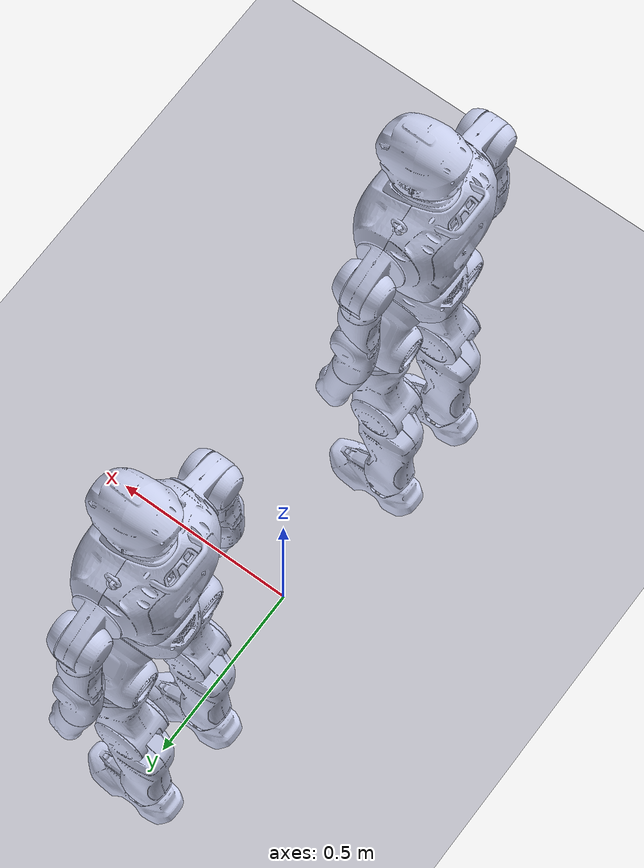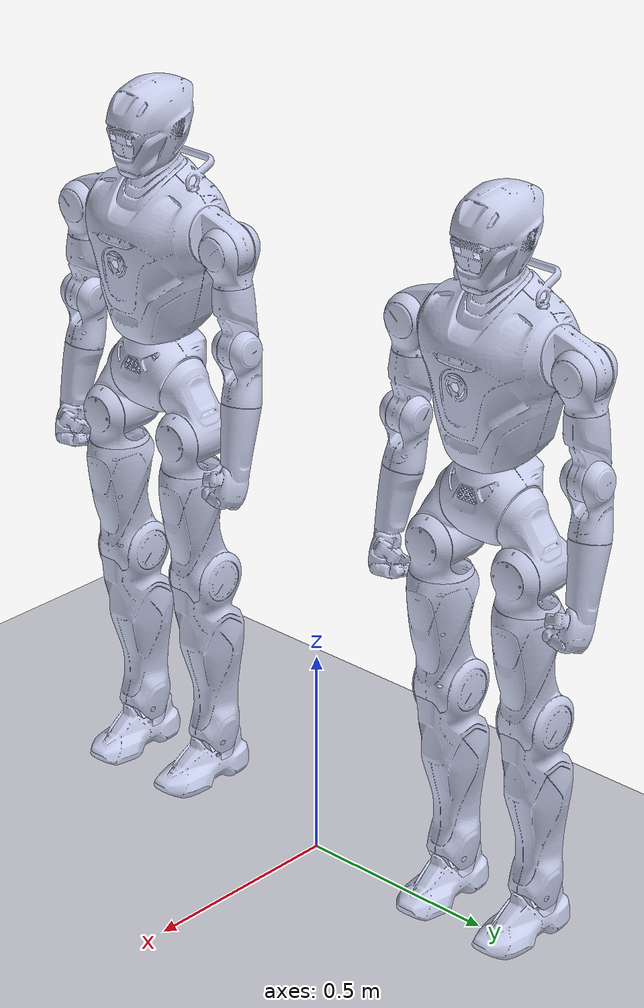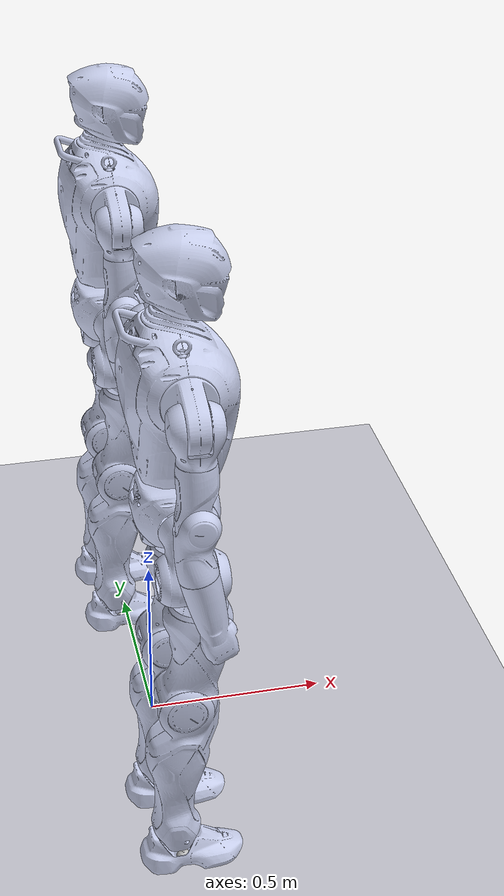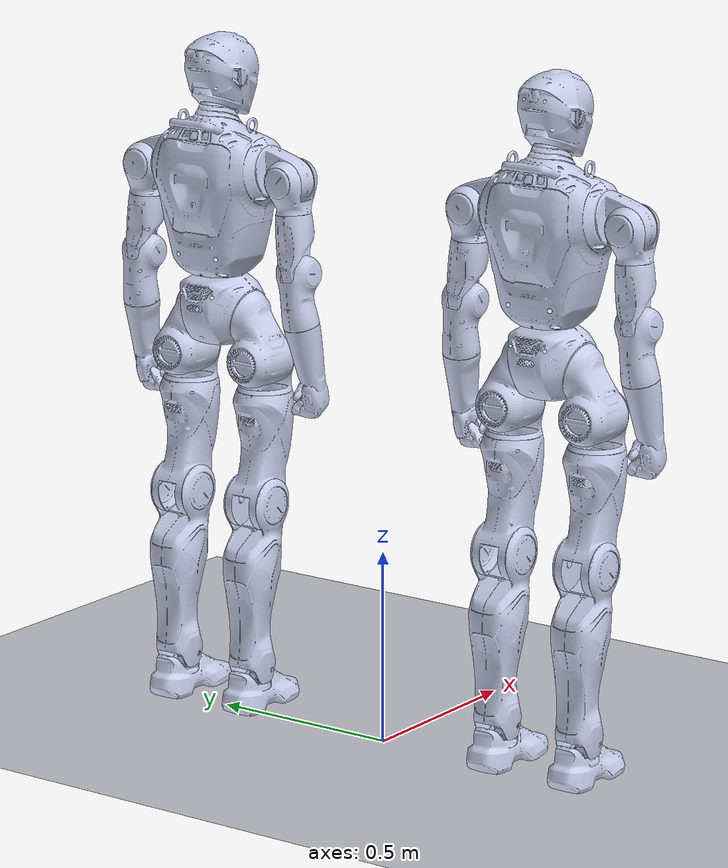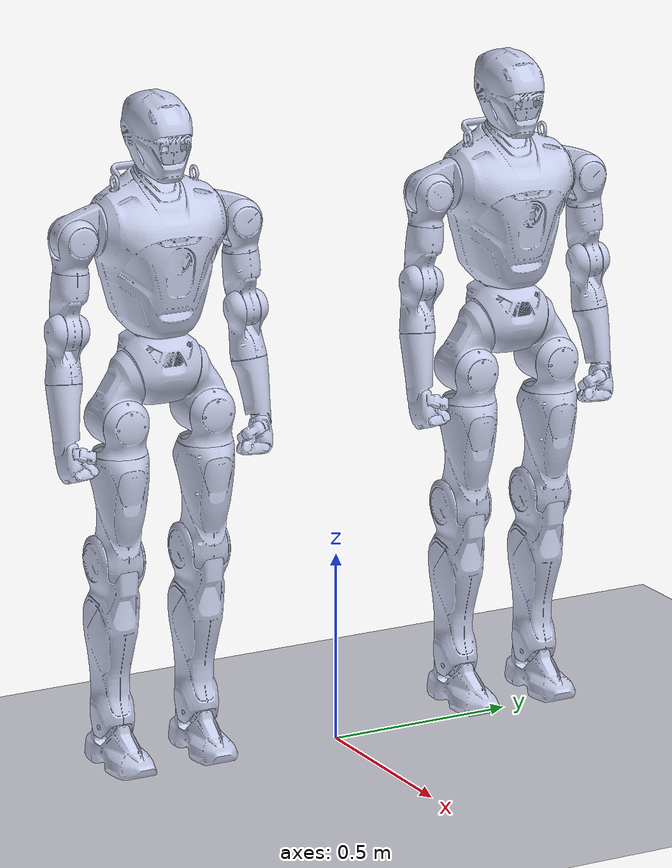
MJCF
<?xml version='1.0' encoding='utf-8'?>
<mujoco model="t800_full_gmr">
  <compiler angle="radian" autolimits="true" meshdir="../meshes" texturedir="../texture" />
  <option gravity="0 0 -9.81" timestep="0.005" />
  <visual>
    <headlight diffuse="0.85 0.85 0.85" ambient="0.35 0.35 0.35" specular="0.20 0.20 0.20" />
    <rgba haze="0.10 0.16 0.22 1" />
  </visual>

  <default>
    <joint damping="1.0" armature="0.01" limited="true" />
    <geom rgba="0.78 0.78 0.82 1" />
    <default class="visual_mesh">
      <geom type="mesh" contype="0" group="2" conaffinity="0" density="0" />
    </default>
    <default class="collision_urdf">
      <geom contype="1" group="3" rgba="1 0.5 0 0" conaffinity="1" />
    </default>
    <default class="collision_fallback">
      <geom contype="1" group="4" rgba="0 0.65 1 0" conaffinity="1" />
    </default>
  </default>
  <asset>
    <texture type="2d" name="LINK_BASE" file="LINK_BASE.png" />
    <texture type="2d" name="LINK_HIP_PITCH" file="LINK_HIP_PITCH_L.png" />
    <texture type="2d" name="LINK_HIP_ROLL" file="LINK_HIP_ROLL_L.png" />
    <texture type="2d" name="LINK_HIP_YAW" file="LINK_HIP_YAW_L.png" />
    <texture type="2d" name="LINK_KNEE_PITCH" file="LINK_KNEE_PITCH_L.png" />
    <texture type="2d" name="LINK_ANKLE_ROLL" file="LINK_ANKLE_ROLL_L.png" />
    <texture type="2d" name="LINK_TORSO_YAW" file="LINK_TORSO_YAW.png" />
    <texture type="2d" name="LINK_SHOULDER_PITCH" file="LINK_SHOULDER_PITCH_L.png" />
    <texture type="2d" name="LINK_SHOULDER_ROLL" file="LINK_SHOULDER_ROLL_L.png" />
    <texture type="2d" name="LINK_SHOULDER_YAW" file="LINK_SHOULDER_YAW_L.png" />
    <texture type="2d" name="LINK_ELBOW_PITCH_L" file="LINK_ELBOW_PITCH_L.png" />
    <texture type="2d" name="LINK_ELBOW_PITCH_R" file="LINK_ELBOW_PITCH_R.png" />
    <texture type="2d" name="LINK_ELBOW_YAW_L" file="LINK_ELBOW_YAW_L.png" />
    <texture type="2d" name="LINK_ELBOW_YAW_R" file="LINK_ELBOW_YAW_R.png" />
    <texture type="2d" name="LINK_HEAD_YAW" file="LINK_HEAD_YAW.png" />
    <material name="LINK_BASE" texture="LINK_BASE" rgba="1 1 1 1" />
    <material name="LINK_HIP_PITCH" texture="LINK_HIP_PITCH" rgba="1 1 1 1" />
    <material name="LINK_HIP_ROLL" texture="LINK_HIP_ROLL" rgba="1 1 1 1" />
    <material name="LINK_HIP_YAW" texture="LINK_HIP_YAW" rgba="1 1 1 1" />
    <material name="LINK_KNEE_PITCH" texture="LINK_KNEE_PITCH" rgba="1 1 1 1" />
    <material name="LINK_ANKLE_ROLL" texture="LINK_ANKLE_ROLL" rgba="1 1 1 1" />
    <material name="LINK_TORSO_YAW" texture="LINK_TORSO_YAW" rgba="1 1 1 1" />
    <material name="LINK_SHOULDER_PITCH" texture="LINK_SHOULDER_PITCH" rgba="1 1 1 1" />
    <material name="LINK_SHOULDER_ROLL" texture="LINK_SHOULDER_ROLL" rgba="1 1 1 1" />
    <material name="LINK_SHOULDER_YAW" texture="LINK_SHOULDER_YAW" rgba="1 1 1 1" />
    <material name="LINK_ELBOW_PITCH_L" texture="LINK_ELBOW_PITCH_L" rgba="1 1 1 1" />
    <material name="LINK_ELBOW_PITCH_R" texture="LINK_ELBOW_PITCH_R" rgba="1 1 1 1" />
    <material name="LINK_ELBOW_YAW_L" texture="LINK_ELBOW_YAW_L" rgba="1 1 1 1" />
    <material name="LINK_ELBOW_YAW_R" texture="LINK_ELBOW_YAW_R" rgba="1 1 1 1" />
    <material name="LINK_HEAD_YAW" texture="LINK_HEAD_YAW" rgba="1 1 1 1" />
    <material name="t800_color_urdf_foot" rgba="0.75294 0.75294 0.75294 1" />
    <mesh name="LINK_BASE" file="LINK_BASE.obj" />
    <mesh name="LINK_HIP_PITCH_L" file="LINK_HIP_PITCH_L.obj" />
    <mesh name="LINK_HIP_ROLL_L" file="LINK_HIP_ROLL_L.obj" />
    <mesh name="LINK_HIP_YAW_L" file="LINK_HIP_YAW_L.obj" />
    <mesh name="LINK_KNEE_PITCH_L" file="LINK_KNEE_PITCH_L.obj" />
    <mesh name="LINK_ANKLE_PITCH_L" file="LINK_ANKLE_PITCH_L.obj" />
    <mesh name="LINK_ANKLE_ROLL_L" file="LINK_ANKLE_ROLL_L.obj" />
    <mesh name="LINK_HIP_PITCH_R" file="LINK_HIP_PITCH_R.obj" />
    <mesh name="LINK_HIP_ROLL_R" file="LINK_HIP_ROLL_R.obj" />
    <mesh name="LINK_HIP_YAW_R" file="LINK_HIP_YAW_R.obj" />
    <mesh name="LINK_KNEE_PITCH_R" file="LINK_KNEE_PITCH_R.obj" />
    <mesh name="LINK_ANKLE_PITCH_R" file="LINK_ANKLE_PITCH_R.obj" />
    <mesh name="LINK_ANKLE_ROLL_R" file="LINK_ANKLE_ROLL_R.obj" />
    <mesh name="LINK_TORSO_YAW" file="LINK_TORSO_YAW.obj" />
    <mesh name="LINK_SHOULDER_PITCH_L" file="LINK_SHOULDER_PITCH_L.obj" />
    <mesh name="LINK_SHOULDER_ROLL_L" file="LINK_SHOULDER_ROLL_L.obj" />
    <mesh name="LINK_SHOULDER_YAW_L" file="LINK_SHOULDER_YAW_L.obj" />
    <mesh name="LINK_ELBOW_PITCH_L" file="LINK_ELBOW_PITCH_L.obj" />
    <mesh name="LINK_ELBOW_YAW_L" file="LINK_ELBOW_YAW_L.obj" />
    <mesh name="LINK_SHOULDER_PITCH_R" file="LINK_SHOULDER_PITCH_R.obj" />
    <mesh name="LINK_SHOULDER_ROLL_R" file="LINK_SHOULDER_ROLL_R.obj" />
    <mesh name="LINK_SHOULDER_YAW_R" file="LINK_SHOULDER_YAW_R.obj" />
    <mesh name="LINK_ELBOW_PITCH_R" file="LINK_ELBOW_PITCH_R.obj" />
    <mesh name="LINK_ELBOW_YAW_R" file="LINK_ELBOW_YAW_R.obj" />
    <mesh name="LINK_HEAD_PITCH" file="LINK_HEAD_PITCH.obj" />
    <mesh name="LINK_HEAD_YAW" file="LINK_HEAD_YAW.obj" />
    <texture type="skybox" builtin="gradient" rgb1="0.85 0.93 1.00" rgb2="0.28 0.45 0.70" width="512" height="3072" />
    <texture name="groundplane" type="2d" builtin="checker" rgb1="0.20 0.24 0.28" rgb2="0.12 0.16 0.20" width="512" height="512" />
    <material name="groundplane" texture="groundplane" texuniform="true" texrepeat="6 6" reflectance="0.15" />
  </asset>
  <worldbody>
    <geom name="floor" type="plane" pos="0 0 0" size="0 0 0.01" material="groundplane" contype="1" conaffinity="0" priority="1" friction="0.6" condim="3" />
    <light name="sky_light" pos="0 0 4.5" dir="0 0 -1" diffuse="0.80 0.80 0.80" ambient="0.20 0.20 0.20" specular="0.15 0.15 0.15" castshadow="false" />
    <body name="LINK_BASE_P1" pos="0 -0.5 1.05">
      <inertial pos="-0.00113725 -0.00039847 0.03264622" mass="10.15411355" fullinertia="0.05091346 0.03420785 0.03312684 -6.512e-05 -0.00052668 -7.559e-05" />
      <freejoint name="root_P1" />
      <geom class="visual_mesh" mesh="LINK_BASE" rgba="0.792157 0.819608 0.933333 1" material="LINK_BASE" />
      <geom pos="-0.01664 0 0.020479" size="0.103608 0.096793 0.098939" type="box" class="collision_fallback" />
      <geom size="0.09" pos="-0.01 0 0.01" type="sphere" class="collision_urdf" />
      <body name="LINK_HIP_PITCH_L_P1" pos="0 0.079178 0">
        <inertial pos="0.0061914 0.03919396 -0.09899764" mass="3.53618815" fullinertia="0.00712783 0.00791389 0.00484137 -4.224e-05 0.00027962 0.00036741" />
        <joint name="J00_HIP_PITCH_L_P1" pos="0 0 0" axis="0.0 0.96593 -0.25882" range="-3.316 2.269" actuatorfrcrange="-415 415" />
        <geom class="visual_mesh" mesh="LINK_HIP_PITCH_L" rgba="0.792157 0.819608 0.933333 1" material="LINK_HIP_PITCH" />
        <geom size="0.07" pos="0 0.04 -0.1" class="collision_urdf" type="sphere" />
        <body name="LINK_HIP_ROLL_L_P1" pos="0.004662 0.040322 -0.10752">
          <inertial pos="0.03753088 4.95e-06 -0.03484554" mass="0.8514425" fullinertia="0.00244215 0.00257237 0.00193429 -7e-08 -0.00068625 4e-08" />
          <joint name="J01_HIP_ROLL_L_P1" pos="0 0 0" axis="1.0 0.0 0.0" range="-1.082 2.059" actuatorfrcrange="-370 370" />
          <body name="LINK_HIP_YAW_L_P1" pos="0.0094616 0 -0.080512">
            <inertial pos="-0.01829844 0.00236123 -0.17634684" mass="7.19482187" fullinertia="0.11175893 0.11561981 0.01307465 0.0003057 -0.01510969 0.00193035" />
            <joint name="J02_HIP_YAW_L_P1" pos="0 0 0" axis="0.0 0.0 1.0" range="-1.42244667 3.6022778" actuatorfrcrange="-222 222" />
            <geom class="visual_mesh" mesh="LINK_HIP_YAW_L" rgba="0.792157 0.819608 0.933333 1" material="LINK_HIP_YAW" />
            <geom size="0.05 0.06 0.09" pos="0 0.002 -0.1" type="box" class="collision_urdf" />
            <body name="LINK_KNEE_PITCH_L_P1" pos="-0.037707 0 -0.28792">
              <inertial pos="-0.01974485 0.00139162 -0.21190749" mass="5.99503443" fullinertia="0.08550064 0.08578017 0.01178722 -0.00012712 -0.0039275 -0.0007153" />
              <joint name="J03_KNEE_PITCH_L_P1" pos="0 0 0" axis="0.0 1.0 0.0" range="0.0 2.355" actuatorfrcrange="-415 415" />
              <geom class="visual_mesh" mesh="LINK_KNEE_PITCH_L" rgba="0.792157 0.819608 0.933333 1" material="LINK_KNEE_PITCH" />
              <geom size="0.08" class="collision_urdf" type="sphere" />
              <geom size="0.055 0.045 0.12" pos="-0.02 0 -0.25" quat="0.9992 0 0.0399893 0" type="box" class="collision_urdf" />
              <body name="LINK_ANKLE_PITCH_L_P1" pos="-0.0027168 0 -0.43867">
                <inertial pos="-3.678e-05 0.0 -0.00887033" mass="0.14422136" fullinertia="6.785e-05 8.493e-05 3.827e-05 0.0 8.9e-07 0.0" />
                <joint name="J04_ANKLE_PITCH_L_P1" pos="0 0 0" axis="0.0 1.0 0.0" range="-0.68068 0.68068" actuatorfrcrange="-160 160" />
                <body name="LINK_ANKLE_ROLL_L_P1" pos="0.0011073 0 -0.037928">
                  <inertial pos="-0.00128738 -0.00120638 -0.0229558" mass="1.49439088" fullinertia="0.00225678 0.00706643 0.00669016 0.00013425 0.00102424 -3.805e-05" />
                  <joint name="J05_ANKLE_ROLL_L_P1" pos="0 0 0" axis="1.0 0.0 0.0" range="-0.3491 0.1745" actuatorfrcrange="-160 160" />
                  <geom class="visual_mesh" mesh="LINK_ANKLE_ROLL_L" rgba="0.792157 0.819608 0.933333 1" material="LINK_ANKLE_ROLL" />
                  <geom size="0.13 0.05 0.01" pos="0.02 0.00166 -0.054" type="box" class="collision_urdf" />
                  <body name="LINK_FOOT_L_P1" pos="0 0 -0.06453">
                    <inertial pos="0 0 0" mass="1e-3" diaginertia="1e-12 1e-12 1e-12" />
                    <geom density="0" size="0.02" type="sphere" contype="0" group="2" conaffinity="0" material="t800_color_urdf_foot" rgba="0.75294 0.75294 0.75294 1" />
                  </body>
                </body>
                <geom class="visual_mesh" mesh="LINK_ANKLE_PITCH_L" rgba="0.792157 0.819608 0.933333 1" />
                <geom pos="0.000082 0 -0.01255" size="0.035636 0.0235 0.036419" type="box" class="collision_fallback" />
              </body>
            </body>
          </body>
          <geom class="visual_mesh" mesh="LINK_HIP_ROLL_L" rgba="0.792157 0.819608 0.933333 1" material="LINK_HIP_ROLL" />
          <geom pos="0.012007 -0.000001 -0.008161" size="0.073102 0.070734 0.071838" type="box" class="collision_fallback" />
        </body>
      </body>
      <body name="LINK_HIP_PITCH_R_P1" pos="0 -0.079178 0">
        <inertial pos="0.0061914 -0.03919396 -0.09899764" mass="3.53618815" fullinertia="0.00712783 0.00791389 0.00484137 4.224e-05 0.00027962 -0.00036741" />
        <joint name="J06_HIP_PITCH_R_P1" pos="0 0 0" axis="0.0 0.96593 0.25882" range="-3.316 2.269" actuatorfrcrange="-415 415" />
        <geom class="visual_mesh" mesh="LINK_HIP_PITCH_R" rgba="0.792157 0.819608 0.933333 1" material="LINK_HIP_PITCH" />
        <geom size="0.07" pos="0 -0.04 -0.1" class="collision_urdf" type="sphere" />
        <body name="LINK_HIP_ROLL_R_P1" pos="0.004662 -0.040322 -0.10752">
          <inertial pos="0.03753088 -4.95e-06 -0.03484554" mass="0.8514425" fullinertia="0.00244215 0.00257237 0.00193429 7e-08 -0.00068625 -4e-08" />
          <joint name="J07_HIP_ROLL_R_P1" pos="0 0 0" axis="1.0 0.0 0.0" range="-2.059 1.082" actuatorfrcrange="-370 370" />
          <body name="LINK_HIP_YAW_R_P1" pos="0.0094616 0 -0.080512">
            <inertial pos="-0.01829844 -0.00236123 -0.17634684" mass="7.19482187" fullinertia="0.11175893 0.11561981 0.01307465 -0.0003057 -0.01510969 -0.00193035" />
            <joint name="J08_HIP_YAW_R_P1" pos="0 0 0" axis="0.0 0.0 1.0" range="-3.6022778 1.42244667" actuatorfrcrange="-222 222" />
            <geom class="visual_mesh" mesh="LINK_HIP_YAW_R" rgba="0.792157 0.819608 0.933333 1" material="LINK_HIP_YAW" />
            <geom size="0.05 0.06 0.09" pos="0 0.002 -0.1" type="box" class="collision_urdf" />
            <body name="LINK_KNEE_PITCH_R_P1" pos="-0.037707 0 -0.28792">
              <inertial pos="-0.01974485 -0.00139162 -0.21190749" mass="5.99503443" fullinertia="0.08550064 0.08578017 0.01178722 0.00012712 -0.0039275 0.0007153" />
              <joint name="J09_KNEE_PITCH_R_P1" pos="0 0 0" axis="0.0 1.0 0.0" range="0.0 2.355" actuatorfrcrange="-415 415" />
              <geom class="visual_mesh" mesh="LINK_KNEE_PITCH_R" rgba="0.792157 0.819608 0.933333 1" material="LINK_KNEE_PITCH" />
              <geom size="0.08" class="collision_urdf" type="sphere" />
              <geom size="0.055 0.045 0.115" pos="-0.02 0 -0.25" quat="0.9992 0 0.0399893 0" type="box" class="collision_urdf" />
              <body name="LINK_ANKLE_PITCH_R_P1" pos="-0.0027168 0 -0.43867">
                <inertial pos="-3.678e-05 0.0 -0.00887033" mass="0.14422136" fullinertia="6.785e-05 8.493e-05 3.827e-05 0.0 8.9e-07 0.0" />
                <joint name="J10_ANKLE_PITCH_R_P1" pos="0 0 0" axis="0.0 1.0 0.0" range="-0.68068 0.68068" actuatorfrcrange="-160 160" />
                <body name="LINK_ANKLE_ROLL_R_P1" pos="0.0011073 0 -0.037928">
                  <inertial pos="-0.00128738 0.00120638 -0.0229558" mass="1.49439088" fullinertia="0.00225678 0.00706643 0.00669016 -0.00013425 0.00102424 3.805e-05" />
                  <joint name="J11_ANKLE_ROLL_R_P1" pos="0 0 0" axis="1.0 0.0 0.0" range="-0.1745 0.3491" actuatorfrcrange="-160 160" />
                  <geom class="visual_mesh" mesh="LINK_ANKLE_ROLL_R" rgba="0.792157 0.819608 0.933333 1" material="LINK_ANKLE_ROLL" />
                  <geom size="0.13 0.05 0.01" pos="0.02 -0.00166 -0.054" type="box" class="collision_urdf" />
                  <body name="LINK_FOOT_R_P1" pos="0 0 -0.06453">
                    <inertial pos="0 0 0" mass="1e-3" diaginertia="1e-12 1e-12 1e-12" />
                    <geom density="0" size="0.02" type="sphere" contype="0" group="2" conaffinity="0" material="t800_color_urdf_foot" rgba="0.75294 0.75294 0.75294 1" />
                  </body>
                </body>
                <geom class="visual_mesh" mesh="LINK_ANKLE_PITCH_R" rgba="0.792157 0.819608 0.933333 1" />
                <geom pos="0.000082 0 -0.01255" size="0.035636 0.0235 0.036419" type="box" class="collision_fallback" />
              </body>
            </body>
          </body>
          <geom class="visual_mesh" mesh="LINK_HIP_ROLL_R" rgba="0.792157 0.819608 0.933333 1" material="LINK_HIP_ROLL" />
          <geom pos="0.012007 0.000001 -0.008161" size="0.073102 0.070734 0.071838" type="box" class="collision_fallback" />
        </body>
      </body>
      <body name="LINK_TORSO_YAW_P1" pos="0 0 0.10384">
        <inertial pos="-0.00880845 -0.0006861 0.22276213" mass="19.41076971" fullinertia="0.25539524 0.20751344 0.15438582 -0.00026892 0.01173447 -7.852e-05" />
        <joint name="J12_TORSO_YAW_P1" pos="0 0 0" axis="0.0 0.0 1.0" range="-4.381 1.2392" actuatorfrcrange="-222 222" />
        <geom class="visual_mesh" mesh="LINK_TORSO_YAW" rgba="0.792157 0.819608 0.933333 1" material="LINK_TORSO_YAW" />
        <geom size="0.09 0.1 0.07" pos="-0.007 -0.001 0.075" type="box" class="collision_urdf" />
        <geom size="0.11 0.14 0.095" pos="-0.007 -0.001 0.25" type="box" class="collision_urdf" />
        <body name="LINK_SHOULDER_PITCH_L_P1" pos="-0.011 0.16303 0.27889">
          <inertial pos="-0.00615457 0.05284179 -0.01248709" mass="1.7688272" fullinertia="0.00239989 0.00144918 0.0020074 9.745e-05 -3.159e-05 0.00030251" />
          <joint name="J13_SHOULDER_PITCH_L_P1" pos="0 0 0" axis="0.0 0.99678 0.080199" range="-2.967 2.793" actuatorfrcrange="-160 160" />
          <geom class="visual_mesh" mesh="LINK_SHOULDER_PITCH_L" rgba="0.792157 0.819608 0.933333 1" material="LINK_SHOULDER_PITCH" />
          <geom size="0.06" pos="0 0.065 -0.012" class="collision_urdf" type="sphere" />
          <body name="LINK_SHOULDER_ROLL_L_P1" pos="0 0.062533 -0.015455">
            <inertial pos="-0.00557192 0.00446659 -0.02712926" mass="0.68289286" fullinertia="0.00156879 0.0021529 0.00145914 -1.213e-05 6.803e-05 0.00010408" />
            <joint name="J14_SHOULDER_ROLL_L_P1" pos="0 0 0" axis="1.0 0.0 0.0" range="-0.384 2.443" actuatorfrcrange="-160 160" />
            <body name="LINK_SHOULDER_YAW_L_P1" pos="3.4602e-05 0.0085246 -0.082712">
              <inertial pos="0.00062214 0.00554981 -0.0898056" mass="2.55202214" fullinertia="0.00983287 0.00995025 0.00117493 -6.39e-06 0.00010691 0.0005084" />
              <joint name="J15_SHOULDER_YAW_L_P1" pos="0 0 0" axis="0.0 -0.071497 0.99744" range="-2.618 2.618" actuatorfrcrange="-160 160" />
              <geom class="visual_mesh" mesh="LINK_SHOULDER_YAW_L" rgba="0.792157 0.819608 0.933333 1" material="LINK_SHOULDER_YAW" />
              <geom size="0.04 0.04 0.05" pos="0.001 0.005 -0.04" type="box" class="collision_urdf" />
              <body name="LINK_ELBOW_PITCH_L_P1" pos="0.0019252 0.013597 -0.15075">
                <inertial pos="-0.00883497 0.00295203 -0.07333339" mass="1.19527475" fullinertia="0.00319176 0.00305525 0.00132406 2.607e-05 -6.835e-05 0.00030884" />
                <joint name="J16_ELBOW_PITCH_L_P1" pos="0 0 0" axis="0.0 0.99744 0.071497" range="-2.286 0.262" actuatorfrcrange="-160 160" />
                <geom class="visual_mesh" mesh="LINK_ELBOW_PITCH_L" rgba="0.792157 0.819608 0.933333 1" material="LINK_ELBOW_PITCH_L" />
                <geom size="0.05" class="collision_urdf" type="sphere" />
                <body name="LINK_ELBOW_YAW_L_P1" pos="-0.0022091 0.0094362 -0.13182">
                  <inertial pos="0.01300939 0.00447975 -0.05843837" mass="1.07882031" fullinertia="0.00196389 0.00214049 0.00091653 -2.258e-05 0.000241 0.00010919" />
                  <joint name="J17_ELBOW_YAW_L_P1" pos="0 0 0" axis="-0.21644 -0.069803 0.9738" range="-2.618 2.618" actuatorfrcrange="-52 52" />
                  <geom class="visual_mesh" mesh="LINK_ELBOW_YAW_L" rgba="0.792157 0.819608 0.933333 1" material="LINK_ELBOW_YAW_L" />
                  <geom size="0.04 0.04 0.07" pos="0.014 0.005 -0.05" quat="0.995004 0 -0.0998334 0" type="box" class="collision_urdf" />
                  <body name="LINK_WRIST_END_L_P1" pos="0.029436 0.0124855 -0.13222151">
                    <inertial pos="0 0 0" mass="1e-3" diaginertia="1e-12 1e-12 1e-12" />
                    <geom size="0.05" pos="0.026 -0.009 -0.06" class="collision_urdf" type="sphere" />
                  </body>
                </body>
              </body>
            </body>
            <geom class="visual_mesh" mesh="LINK_SHOULDER_ROLL_L" rgba="0.792157 0.819608 0.933333 1" material="LINK_SHOULDER_ROLL" />
            <geom pos="0.0 0.000886 -0.016108" size="0.060949 0.052878 0.069315" type="box" class="collision_fallback" />
          </body>
        </body>
        <body name="LINK_SHOULDER_PITCH_R_P1" pos="-0.011 -0.16303 0.27889">
          <inertial pos="-0.00615457 -0.05284179 -0.01248709" mass="1.7688272" fullinertia="0.00239989 0.00144918 0.0020074 -9.745e-05 -3.159e-05 -0.00030251" />
          <joint name="J20_SHOULDER_PITCH_R_P1" pos="0 0 0" axis="0.0 0.99678 -0.080199" range="-2.967 2.793" actuatorfrcrange="-160 160" />
          <geom class="visual_mesh" mesh="LINK_SHOULDER_PITCH_R" rgba="0.792157 0.819608 0.933333 1" material="LINK_SHOULDER_PITCH" />
          <geom size="0.06" pos="0 -0.065 -0.012" class="collision_urdf" type="sphere" />
          <body name="LINK_SHOULDER_ROLL_R_P1" pos="0 -0.062533 -0.015455">
            <inertial pos="-0.00557192 -0.00446659 -0.02712926" mass="0.68289286" fullinertia="0.00156879 0.0021529 0.00145914 1.213e-05 6.803e-05 -0.00010408" />
            <joint name="J21_SHOULDER_ROLL_R_P1" pos="0 0 0" axis="1.0 0.0 0.0" range="-2.443 0.384" actuatorfrcrange="-160 160" />
            <body name="LINK_SHOULDER_YAW_R_P1" pos="3.4602e-05 -0.0085246 -0.082712">
              <inertial pos="0.00062214 -0.00554981 -0.0898056" mass="2.55202214" fullinertia="0.00983287 0.00995025 0.00117493 6.39e-06 0.00010691 -0.0005084" />
              <joint name="J22_SHOULDER_YAW_R_P1" pos="0 0 0" axis="0.0 0.071497 0.99744" range="-2.618 2.618" actuatorfrcrange="-160 160" />
              <geom class="visual_mesh" mesh="LINK_SHOULDER_YAW_R" rgba="0.792157 0.819608 0.933333 1" material="LINK_SHOULDER_YAW" />
              <geom size="0.04 0.04 0.05" pos="0.001 -0.005 -0.04" type="box" class="collision_urdf" />
              <body name="LINK_ELBOW_PITCH_R_P1" pos="0.0019252 -0.013597 -0.15075">
                <inertial pos="-0.00883497 -0.00295203 -0.07333339" mass="1.19527475" fullinertia="0.00319176 0.00305525 0.00132406 -2.607e-05 -6.835e-05 -0.00030884" />
                <joint name="J23_ELBOW_PITCH_R_P1" pos="0 0 0" axis="0.0 0.99744 -0.071497" range="-2.286 0.262" actuatorfrcrange="-160 160" />
                <geom class="visual_mesh" mesh="LINK_ELBOW_PITCH_R" rgba="0.792157 0.819608 0.933333 1" material="LINK_ELBOW_PITCH_R" />
                <geom size="0.05" class="collision_urdf" type="sphere" />
                <body name="LINK_ELBOW_YAW_R_P1" pos="-0.0022091 -0.0094362 -0.13182">
                  <inertial pos="0.01300939 -0.00447975 -0.05843837" mass="1.07882031" fullinertia="0.00196389 0.00214049 0.00091653 2.258e-05 0.000241 -0.00010919" />
                  <joint name="J24_ELBOW_YAW_R_P1" pos="0 0 0" axis="-0.21644 0.069803 0.9738" range="-2.618 2.618" actuatorfrcrange="-52 52" />
                  <geom class="visual_mesh" mesh="LINK_ELBOW_YAW_R" rgba="0.792157 0.819608 0.933333 1" material="LINK_ELBOW_YAW_R" />
                  <geom size="0.04 0.04 0.07" pos="0.014 -0.005 -0.05" quat="0.995004 0 -0.0998334 0" type="box" class="collision_urdf" />
                  <body name="LINK_WRIST_END_R_P1" pos="0.029436 -0.0124855 -0.13222151">
                    <inertial pos="0 0 0" mass="1e-3" diaginertia="1e-12 1e-12 1e-12" />
                    <geom size="0.05" pos="0.026 0.009 -0.06" class="collision_urdf" type="sphere" />
                  </body>
                </body>
              </body>
            </body>
            <geom class="visual_mesh" mesh="LINK_SHOULDER_ROLL_R" rgba="0.792157 0.819608 0.933333 1" material="LINK_SHOULDER_ROLL" />
            <geom pos="0.0 -0.000886 -0.016108" size="0.060949 0.052878 0.069315" type="box" class="collision_fallback" />
          </body>
        </body>
        <body name="LINK_HEAD_PITCH_P1" pos="-0.0113 0 0.38604">
          <inertial pos="0.00012689 0.00010014 0.06729533" mass="0.70796621" fullinertia="0.00066047 0.00056345 0.00045592 3.6e-07 -6.5e-07 -9.48e-06" />
          <joint name="J27_HEAD_PITCH_P1" pos="0 0 0" axis="0.0 1.0 0.0" range="-0.523 0.523" actuatorfrcrange="-52 52" />
          <body name="LINK_HEAD_YAW_P1" pos="0 0 0.040199">
            <inertial pos="0.01813255 4.92e-06 0.09289441" mass="1.72376594" fullinertia="0.00704823 0.00848513 0.00775266 1.02e-06 0.00078549 -8.7e-07" />
            <joint name="J28_HEAD_YAW_P1" pos="0 0 0" axis="0.0 0.0 1.0" range="-1.222 1.222" actuatorfrcrange="-52 52" />
            <geom class="visual_mesh" mesh="LINK_HEAD_YAW" rgba="0.792157 0.819608 0.933333 1" material="LINK_HEAD_YAW" />
            <geom size="0.08" pos="0.018 0 0.08" class="collision_urdf" type="sphere" />
          </body>
          <geom class="visual_mesh" mesh="LINK_HEAD_PITCH" rgba="0.792157 0.819608 0.933333 1" />
          <geom pos="-0.000051 0.001 -0.000013" size="0.019699 0.0325 0.019737" type="box" class="collision_fallback" />
        </body>
      </body>
    </body><body name="LINK_BASE_P2" pos="0 0.5 1.05">
      <inertial pos="-0.00113725 -0.00039847 0.03264622" mass="10.15411355" fullinertia="0.05091346 0.03420785 0.03312684 -6.512e-05 -0.00052668 -7.559e-05" />
      <freejoint name="root_P2" />
      <geom class="visual_mesh" mesh="LINK_BASE" rgba="0.792157 0.819608 0.933333 1" material="LINK_BASE" />
      <geom pos="-0.01664 0 0.020479" size="0.103608 0.096793 0.098939" type="box" class="collision_fallback" />
      <geom size="0.09" pos="-0.01 0 0.01" type="sphere" class="collision_urdf" />
      <body name="LINK_HIP_PITCH_L_P2" pos="0 0.079178 0">
        <inertial pos="0.0061914 0.03919396 -0.09899764" mass="3.53618815" fullinertia="0.00712783 0.00791389 0.00484137 -4.224e-05 0.00027962 0.00036741" />
        <joint name="J00_HIP_PITCH_L_P2" pos="0 0 0" axis="0.0 0.96593 -0.25882" range="-3.316 2.269" actuatorfrcrange="-415 415" />
        <geom class="visual_mesh" mesh="LINK_HIP_PITCH_L" rgba="0.792157 0.819608 0.933333 1" material="LINK_HIP_PITCH" />
        <geom size="0.07" pos="0 0.04 -0.1" class="collision_urdf" type="sphere" />
        <body name="LINK_HIP_ROLL_L_P2" pos="0.004662 0.040322 -0.10752">
          <inertial pos="0.03753088 4.95e-06 -0.03484554" mass="0.8514425" fullinertia="0.00244215 0.00257237 0.00193429 -7e-08 -0.00068625 4e-08" />
          <joint name="J01_HIP_ROLL_L_P2" pos="0 0 0" axis="1.0 0.0 0.0" range="-1.082 2.059" actuatorfrcrange="-370 370" />
          <body name="LINK_HIP_YAW_L_P2" pos="0.0094616 0 -0.080512">
            <inertial pos="-0.01829844 0.00236123 -0.17634684" mass="7.19482187" fullinertia="0.11175893 0.11561981 0.01307465 0.0003057 -0.01510969 0.00193035" />
            <joint name="J02_HIP_YAW_L_P2" pos="0 0 0" axis="0.0 0.0 1.0" range="-1.42244667 3.6022778" actuatorfrcrange="-222 222" />
            <geom class="visual_mesh" mesh="LINK_HIP_YAW_L" rgba="0.792157 0.819608 0.933333 1" material="LINK_HIP_YAW" />
            <geom size="0.05 0.06 0.09" pos="0 0.002 -0.1" type="box" class="collision_urdf" />
            <body name="LINK_KNEE_PITCH_L_P2" pos="-0.037707 0 -0.28792">
              <inertial pos="-0.01974485 0.00139162 -0.21190749" mass="5.99503443" fullinertia="0.08550064 0.08578017 0.01178722 -0.00012712 -0.0039275 -0.0007153" />
              <joint name="J03_KNEE_PITCH_L_P2" pos="0 0 0" axis="0.0 1.0 0.0" range="0.0 2.355" actuatorfrcrange="-415 415" />
              <geom class="visual_mesh" mesh="LINK_KNEE_PITCH_L" rgba="0.792157 0.819608 0.933333 1" material="LINK_KNEE_PITCH" />
              <geom size="0.08" class="collision_urdf" type="sphere" />
              <geom size="0.055 0.045 0.12" pos="-0.02 0 -0.25" quat="0.9992 0 0.0399893 0" type="box" class="collision_urdf" />
              <body name="LINK_ANKLE_PITCH_L_P2" pos="-0.0027168 0 -0.43867">
                <inertial pos="-3.678e-05 0.0 -0.00887033" mass="0.14422136" fullinertia="6.785e-05 8.493e-05 3.827e-05 0.0 8.9e-07 0.0" />
                <joint name="J04_ANKLE_PITCH_L_P2" pos="0 0 0" axis="0.0 1.0 0.0" range="-0.68068 0.68068" actuatorfrcrange="-160 160" />
                <body name="LINK_ANKLE_ROLL_L_P2" pos="0.0011073 0 -0.037928">
                  <inertial pos="-0.00128738 -0.00120638 -0.0229558" mass="1.49439088" fullinertia="0.00225678 0.00706643 0.00669016 0.00013425 0.00102424 -3.805e-05" />
                  <joint name="J05_ANKLE_ROLL_L_P2" pos="0 0 0" axis="1.0 0.0 0.0" range="-0.3491 0.1745" actuatorfrcrange="-160 160" />
                  <geom class="visual_mesh" mesh="LINK_ANKLE_ROLL_L" rgba="0.792157 0.819608 0.933333 1" material="LINK_ANKLE_ROLL" />
                  <geom size="0.13 0.05 0.01" pos="0.02 0.00166 -0.054" type="box" class="collision_urdf" />
                  <body name="LINK_FOOT_L_P2" pos="0 0 -0.06453">
                    <inertial pos="0 0 0" mass="1e-3" diaginertia="1e-12 1e-12 1e-12" />
                    <geom density="0" size="0.02" type="sphere" contype="0" group="2" conaffinity="0" material="t800_color_urdf_foot" rgba="0.75294 0.75294 0.75294 1" />
                  </body>
                </body>
                <geom class="visual_mesh" mesh="LINK_ANKLE_PITCH_L" rgba="0.792157 0.819608 0.933333 1" />
                <geom pos="0.000082 0 -0.01255" size="0.035636 0.0235 0.036419" type="box" class="collision_fallback" />
              </body>
            </body>
          </body>
          <geom class="visual_mesh" mesh="LINK_HIP_ROLL_L" rgba="0.792157 0.819608 0.933333 1" material="LINK_HIP_ROLL" />
          <geom pos="0.012007 -0.000001 -0.008161" size="0.073102 0.070734 0.071838" type="box" class="collision_fallback" />
        </body>
      </body>
      <body name="LINK_HIP_PITCH_R_P2" pos="0 -0.079178 0">
        <inertial pos="0.0061914 -0.03919396 -0.09899764" mass="3.53618815" fullinertia="0.00712783 0.00791389 0.00484137 4.224e-05 0.00027962 -0.00036741" />
        <joint name="J06_HIP_PITCH_R_P2" pos="0 0 0" axis="0.0 0.96593 0.25882" range="-3.316 2.269" actuatorfrcrange="-415 415" />
        <geom class="visual_mesh" mesh="LINK_HIP_PITCH_R" rgba="0.792157 0.819608 0.933333 1" material="LINK_HIP_PITCH" />
        <geom size="0.07" pos="0 -0.04 -0.1" class="collision_urdf" type="sphere" />
        <body name="LINK_HIP_ROLL_R_P2" pos="0.004662 -0.040322 -0.10752">
          <inertial pos="0.03753088 -4.95e-06 -0.03484554" mass="0.8514425" fullinertia="0.00244215 0.00257237 0.00193429 7e-08 -0.00068625 -4e-08" />
          <joint name="J07_HIP_ROLL_R_P2" pos="0 0 0" axis="1.0 0.0 0.0" range="-2.059 1.082" actuatorfrcrange="-370 370" />
          <body name="LINK_HIP_YAW_R_P2" pos="0.0094616 0 -0.080512">
            <inertial pos="-0.01829844 -0.00236123 -0.17634684" mass="7.19482187" fullinertia="0.11175893 0.11561981 0.01307465 -0.0003057 -0.01510969 -0.00193035" />
            <joint name="J08_HIP_YAW_R_P2" pos="0 0 0" axis="0.0 0.0 1.0" range="-3.6022778 1.42244667" actuatorfrcrange="-222 222" />
            <geom class="visual_mesh" mesh="LINK_HIP_YAW_R" rgba="0.792157 0.819608 0.933333 1" material="LINK_HIP_YAW" />
            <geom size="0.05 0.06 0.09" pos="0 0.002 -0.1" type="box" class="collision_urdf" />
            <body name="LINK_KNEE_PITCH_R_P2" pos="-0.037707 0 -0.28792">
              <inertial pos="-0.01974485 -0.00139162 -0.21190749" mass="5.99503443" fullinertia="0.08550064 0.08578017 0.01178722 0.00012712 -0.0039275 0.0007153" />
              <joint name="J09_KNEE_PITCH_R_P2" pos="0 0 0" axis="0.0 1.0 0.0" range="0.0 2.355" actuatorfrcrange="-415 415" />
              <geom class="visual_mesh" mesh="LINK_KNEE_PITCH_R" rgba="0.792157 0.819608 0.933333 1" material="LINK_KNEE_PITCH" />
              <geom size="0.08" class="collision_urdf" type="sphere" />
              <geom size="0.055 0.045 0.115" pos="-0.02 0 -0.25" quat="0.9992 0 0.0399893 0" type="box" class="collision_urdf" />
              <body name="LINK_ANKLE_PITCH_R_P2" pos="-0.0027168 0 -0.43867">
                <inertial pos="-3.678e-05 0.0 -0.00887033" mass="0.14422136" fullinertia="6.785e-05 8.493e-05 3.827e-05 0.0 8.9e-07 0.0" />
                <joint name="J10_ANKLE_PITCH_R_P2" pos="0 0 0" axis="0.0 1.0 0.0" range="-0.68068 0.68068" actuatorfrcrange="-160 160" />
                <body name="LINK_ANKLE_ROLL_R_P2" pos="0.0011073 0 -0.037928">
                  <inertial pos="-0.00128738 0.00120638 -0.0229558" mass="1.49439088" fullinertia="0.00225678 0.00706643 0.00669016 -0.00013425 0.00102424 3.805e-05" />
                  <joint name="J11_ANKLE_ROLL_R_P2" pos="0 0 0" axis="1.0 0.0 0.0" range="-0.1745 0.3491" actuatorfrcrange="-160 160" />
                  <geom class="visual_mesh" mesh="LINK_ANKLE_ROLL_R" rgba="0.792157 0.819608 0.933333 1" material="LINK_ANKLE_ROLL" />
                  <geom size="0.13 0.05 0.01" pos="0.02 -0.00166 -0.054" type="box" class="collision_urdf" />
                  <body name="LINK_FOOT_R_P2" pos="0 0 -0.06453">
                    <inertial pos="0 0 0" mass="1e-3" diaginertia="1e-12 1e-12 1e-12" />
                    <geom density="0" size="0.02" type="sphere" contype="0" group="2" conaffinity="0" material="t800_color_urdf_foot" rgba="0.75294 0.75294 0.75294 1" />
                  </body>
                </body>
                <geom class="visual_mesh" mesh="LINK_ANKLE_PITCH_R" rgba="0.792157 0.819608 0.933333 1" />
                <geom pos="0.000082 0 -0.01255" size="0.035636 0.0235 0.036419" type="box" class="collision_fallback" />
              </body>
            </body>
          </body>
          <geom class="visual_mesh" mesh="LINK_HIP_ROLL_R" rgba="0.792157 0.819608 0.933333 1" material="LINK_HIP_ROLL" />
          <geom pos="0.012007 0.000001 -0.008161" size="0.073102 0.070734 0.071838" type="box" class="collision_fallback" />
        </body>
      </body>
      <body name="LINK_TORSO_YAW_P2" pos="0 0 0.10384">
        <inertial pos="-0.00880845 -0.0006861 0.22276213" mass="19.41076971" fullinertia="0.25539524 0.20751344 0.15438582 -0.00026892 0.01173447 -7.852e-05" />
        <joint name="J12_TORSO_YAW_P2" pos="0 0 0" axis="0.0 0.0 1.0" range="-4.381 1.2392" actuatorfrcrange="-222 222" />
        <geom class="visual_mesh" mesh="LINK_TORSO_YAW" rgba="0.792157 0.819608 0.933333 1" material="LINK_TORSO_YAW" />
        <geom size="0.09 0.1 0.07" pos="-0.007 -0.001 0.075" type="box" class="collision_urdf" />
        <geom size="0.11 0.14 0.095" pos="-0.007 -0.001 0.25" type="box" class="collision_urdf" />
        <body name="LINK_SHOULDER_PITCH_L_P2" pos="-0.011 0.16303 0.27889">
          <inertial pos="-0.00615457 0.05284179 -0.01248709" mass="1.7688272" fullinertia="0.00239989 0.00144918 0.0020074 9.745e-05 -3.159e-05 0.00030251" />
          <joint name="J13_SHOULDER_PITCH_L_P2" pos="0 0 0" axis="0.0 0.99678 0.080199" range="-2.967 2.793" actuatorfrcrange="-160 160" />
          <geom class="visual_mesh" mesh="LINK_SHOULDER_PITCH_L" rgba="0.792157 0.819608 0.933333 1" material="LINK_SHOULDER_PITCH" />
          <geom size="0.06" pos="0 0.065 -0.012" class="collision_urdf" type="sphere" />
          <body name="LINK_SHOULDER_ROLL_L_P2" pos="0 0.062533 -0.015455">
            <inertial pos="-0.00557192 0.00446659 -0.02712926" mass="0.68289286" fullinertia="0.00156879 0.0021529 0.00145914 -1.213e-05 6.803e-05 0.00010408" />
            <joint name="J14_SHOULDER_ROLL_L_P2" pos="0 0 0" axis="1.0 0.0 0.0" range="-0.384 2.443" actuatorfrcrange="-160 160" />
            <body name="LINK_SHOULDER_YAW_L_P2" pos="3.4602e-05 0.0085246 -0.082712">
              <inertial pos="0.00062214 0.00554981 -0.0898056" mass="2.55202214" fullinertia="0.00983287 0.00995025 0.00117493 -6.39e-06 0.00010691 0.0005084" />
              <joint name="J15_SHOULDER_YAW_L_P2" pos="0 0 0" axis="0.0 -0.071497 0.99744" range="-2.618 2.618" actuatorfrcrange="-160 160" />
              <geom class="visual_mesh" mesh="LINK_SHOULDER_YAW_L" rgba="0.792157 0.819608 0.933333 1" material="LINK_SHOULDER_YAW" />
              <geom size="0.04 0.04 0.05" pos="0.001 0.005 -0.04" type="box" class="collision_urdf" />
              <body name="LINK_ELBOW_PITCH_L_P2" pos="0.0019252 0.013597 -0.15075">
                <inertial pos="-0.00883497 0.00295203 -0.07333339" mass="1.19527475" fullinertia="0.00319176 0.00305525 0.00132406 2.607e-05 -6.835e-05 0.00030884" />
                <joint name="J16_ELBOW_PITCH_L_P2" pos="0 0 0" axis="0.0 0.99744 0.071497" range="-2.286 0.262" actuatorfrcrange="-160 160" />
                <geom class="visual_mesh" mesh="LINK_ELBOW_PITCH_L" rgba="0.792157 0.819608 0.933333 1" material="LINK_ELBOW_PITCH_L" />
                <geom size="0.05" class="collision_urdf" type="sphere" />
                <body name="LINK_ELBOW_YAW_L_P2" pos="-0.0022091 0.0094362 -0.13182">
                  <inertial pos="0.01300939 0.00447975 -0.05843837" mass="1.07882031" fullinertia="0.00196389 0.00214049 0.00091653 -2.258e-05 0.000241 0.00010919" />
                  <joint name="J17_ELBOW_YAW_L_P2" pos="0 0 0" axis="-0.21644 -0.069803 0.9738" range="-2.618 2.618" actuatorfrcrange="-52 52" />
                  <geom class="visual_mesh" mesh="LINK_ELBOW_YAW_L" rgba="0.792157 0.819608 0.933333 1" material="LINK_ELBOW_YAW_L" />
                  <geom size="0.04 0.04 0.07" pos="0.014 0.005 -0.05" quat="0.995004 0 -0.0998334 0" type="box" class="collision_urdf" />
                  <body name="LINK_WRIST_END_L_P2" pos="0.029436 0.0124855 -0.13222151">
                    <inertial pos="0 0 0" mass="1e-3" diaginertia="1e-12 1e-12 1e-12" />
                    <geom size="0.05" pos="0.026 -0.009 -0.06" class="collision_urdf" type="sphere" />
                  </body>
                </body>
              </body>
            </body>
            <geom class="visual_mesh" mesh="LINK_SHOULDER_ROLL_L" rgba="0.792157 0.819608 0.933333 1" material="LINK_SHOULDER_ROLL" />
            <geom pos="0.0 0.000886 -0.016108" size="0.060949 0.052878 0.069315" type="box" class="collision_fallback" />
          </body>
        </body>
        <body name="LINK_SHOULDER_PITCH_R_P2" pos="-0.011 -0.16303 0.27889">
          <inertial pos="-0.00615457 -0.05284179 -0.01248709" mass="1.7688272" fullinertia="0.00239989 0.00144918 0.0020074 -9.745e-05 -3.159e-05 -0.00030251" />
          <joint name="J20_SHOULDER_PITCH_R_P2" pos="0 0 0" axis="0.0 0.99678 -0.080199" range="-2.967 2.793" actuatorfrcrange="-160 160" />
          <geom class="visual_mesh" mesh="LINK_SHOULDER_PITCH_R" rgba="0.792157 0.819608 0.933333 1" material="LINK_SHOULDER_PITCH" />
          <geom size="0.06" pos="0 -0.065 -0.012" class="collision_urdf" type="sphere" />
          <body name="LINK_SHOULDER_ROLL_R_P2" pos="0 -0.062533 -0.015455">
            <inertial pos="-0.00557192 -0.00446659 -0.02712926" mass="0.68289286" fullinertia="0.00156879 0.0021529 0.00145914 1.213e-05 6.803e-05 -0.00010408" />
            <joint name="J21_SHOULDER_ROLL_R_P2" pos="0 0 0" axis="1.0 0.0 0.0" range="-2.443 0.384" actuatorfrcrange="-160 160" />
            <body name="LINK_SHOULDER_YAW_R_P2" pos="3.4602e-05 -0.0085246 -0.082712">
              <inertial pos="0.00062214 -0.00554981 -0.0898056" mass="2.55202214" fullinertia="0.00983287 0.00995025 0.00117493 6.39e-06 0.00010691 -0.0005084" />
              <joint name="J22_SHOULDER_YAW_R_P2" pos="0 0 0" axis="0.0 0.071497 0.99744" range="-2.618 2.618" actuatorfrcrange="-160 160" />
              <geom class="visual_mesh" mesh="LINK_SHOULDER_YAW_R" rgba="0.792157 0.819608 0.933333 1" material="LINK_SHOULDER_YAW" />
              <geom size="0.04 0.04 0.05" pos="0.001 -0.005 -0.04" type="box" class="collision_urdf" />
              <body name="LINK_ELBOW_PITCH_R_P2" pos="0.0019252 -0.013597 -0.15075">
                <inertial pos="-0.00883497 -0.00295203 -0.07333339" mass="1.19527475" fullinertia="0.00319176 0.00305525 0.00132406 -2.607e-05 -6.835e-05 -0.00030884" />
                <joint name="J23_ELBOW_PITCH_R_P2" pos="0 0 0" axis="0.0 0.99744 -0.071497" range="-2.286 0.262" actuatorfrcrange="-160 160" />
                <geom class="visual_mesh" mesh="LINK_ELBOW_PITCH_R" rgba="0.792157 0.819608 0.933333 1" material="LINK_ELBOW_PITCH_R" />
                <geom size="0.05" class="collision_urdf" type="sphere" />
                <body name="LINK_ELBOW_YAW_R_P2" pos="-0.0022091 -0.0094362 -0.13182">
                  <inertial pos="0.01300939 -0.00447975 -0.05843837" mass="1.07882031" fullinertia="0.00196389 0.00214049 0.00091653 2.258e-05 0.000241 -0.00010919" />
                  <joint name="J24_ELBOW_YAW_R_P2" pos="0 0 0" axis="-0.21644 0.069803 0.9738" range="-2.618 2.618" actuatorfrcrange="-52 52" />
                  <geom class="visual_mesh" mesh="LINK_ELBOW_YAW_R" rgba="0.792157 0.819608 0.933333 1" material="LINK_ELBOW_YAW_R" />
                  <geom size="0.04 0.04 0.07" pos="0.014 -0.005 -0.05" quat="0.995004 0 -0.0998334 0" type="box" class="collision_urdf" />
                  <body name="LINK_WRIST_END_R_P2" pos="0.029436 -0.0124855 -0.13222151">
                    <inertial pos="0 0 0" mass="1e-3" diaginertia="1e-12 1e-12 1e-12" />
                    <geom size="0.05" pos="0.026 0.009 -0.06" class="collision_urdf" type="sphere" />
                  </body>
                </body>
              </body>
            </body>
            <geom class="visual_mesh" mesh="LINK_SHOULDER_ROLL_R" rgba="0.792157 0.819608 0.933333 1" material="LINK_SHOULDER_ROLL" />
            <geom pos="0.0 -0.000886 -0.016108" size="0.060949 0.052878 0.069315" type="box" class="collision_fallback" />
          </body>
        </body>
        <body name="LINK_HEAD_PITCH_P2" pos="-0.0113 0 0.38604">
          <inertial pos="0.00012689 0.00010014 0.06729533" mass="0.70796621" fullinertia="0.00066047 0.00056345 0.00045592 3.6e-07 -6.5e-07 -9.48e-06" />
          <joint name="J27_HEAD_PITCH_P2" pos="0 0 0" axis="0.0 1.0 0.0" range="-0.523 0.523" actuatorfrcrange="-52 52" />
          <body name="LINK_HEAD_YAW_P2" pos="0 0 0.040199">
            <inertial pos="0.01813255 4.92e-06 0.09289441" mass="1.72376594" fullinertia="0.00704823 0.00848513 0.00775266 1.02e-06 0.00078549 -8.7e-07" />
            <joint name="J28_HEAD_YAW_P2" pos="0 0 0" axis="0.0 0.0 1.0" range="-1.222 1.222" actuatorfrcrange="-52 52" />
            <geom class="visual_mesh" mesh="LINK_HEAD_YAW" rgba="0.792157 0.819608 0.933333 1" material="LINK_HEAD_YAW" />
            <geom size="0.08" pos="0.018 0 0.08" class="collision_urdf" type="sphere" />
          </body>
          <geom class="visual_mesh" mesh="LINK_HEAD_PITCH" rgba="0.792157 0.819608 0.933333 1" />
          <geom pos="-0.000051 0.001 -0.000013" size="0.019699 0.0325 0.019737" type="box" class="collision_fallback" />
        </body>
      </body>
    </body></worldbody>
  <actuator>
    <motor name="J00_HIP_PITCH_L_P1" joint="J00_HIP_PITCH_L_P1" gear="1" ctrllimited="true" ctrlrange="-415 415" forcelimited="true" forcerange="-415 415" /><motor name="J00_HIP_PITCH_L_P2" joint="J00_HIP_PITCH_L_P2" gear="1" ctrllimited="true" ctrlrange="-415 415" forcelimited="true" forcerange="-415 415" /><motor name="J01_HIP_ROLL_L_P1" joint="J01_HIP_ROLL_L_P1" gear="1" ctrllimited="true" ctrlrange="-370 370" forcelimited="true" forcerange="-370 370" /><motor name="J01_HIP_ROLL_L_P2" joint="J01_HIP_ROLL_L_P2" gear="1" ctrllimited="true" ctrlrange="-370 370" forcelimited="true" forcerange="-370 370" /><motor name="J02_HIP_YAW_L_P1" joint="J02_HIP_YAW_L_P1" gear="1" ctrllimited="true" ctrlrange="-222 222" forcelimited="true" forcerange="-222 222" /><motor name="J02_HIP_YAW_L_P2" joint="J02_HIP_YAW_L_P2" gear="1" ctrllimited="true" ctrlrange="-222 222" forcelimited="true" forcerange="-222 222" /><motor name="J03_KNEE_PITCH_L_P1" joint="J03_KNEE_PITCH_L_P1" gear="1" ctrllimited="true" ctrlrange="-415 415" forcelimited="true" forcerange="-415 415" /><motor name="J03_KNEE_PITCH_L_P2" joint="J03_KNEE_PITCH_L_P2" gear="1" ctrllimited="true" ctrlrange="-415 415" forcelimited="true" forcerange="-415 415" /><motor name="J04_ANKLE_PITCH_L_P1" joint="J04_ANKLE_PITCH_L_P1" gear="1" ctrllimited="true" ctrlrange="-160 160" forcelimited="true" forcerange="-160 160" /><motor name="J04_ANKLE_PITCH_L_P2" joint="J04_ANKLE_PITCH_L_P2" gear="1" ctrllimited="true" ctrlrange="-160 160" forcelimited="true" forcerange="-160 160" /><motor name="J05_ANKLE_ROLL_L_P1" joint="J05_ANKLE_ROLL_L_P1" gear="1" ctrllimited="true" ctrlrange="-160 160" forcelimited="true" forcerange="-160 160" /><motor name="J05_ANKLE_ROLL_L_P2" joint="J05_ANKLE_ROLL_L_P2" gear="1" ctrllimited="true" ctrlrange="-160 160" forcelimited="true" forcerange="-160 160" /><motor name="J06_HIP_PITCH_R_P1" joint="J06_HIP_PITCH_R_P1" gear="1" ctrllimited="true" ctrlrange="-415 415" forcelimited="true" forcerange="-415 415" /><motor name="J06_HIP_PITCH_R_P2" joint="J06_HIP_PITCH_R_P2" gear="1" ctrllimited="true" ctrlrange="-415 415" forcelimited="true" forcerange="-415 415" /><motor name="J07_HIP_ROLL_R_P1" joint="J07_HIP_ROLL_R_P1" gear="1" ctrllimited="true" ctrlrange="-370 370" forcelimited="true" forcerange="-370 370" /><motor name="J07_HIP_ROLL_R_P2" joint="J07_HIP_ROLL_R_P2" gear="1" ctrllimited="true" ctrlrange="-370 370" forcelimited="true" forcerange="-370 370" /><motor name="J08_HIP_YAW_R_P1" joint="J08_HIP_YAW_R_P1" gear="1" ctrllimited="true" ctrlrange="-222 222" forcelimited="true" forcerange="-222 222" /><motor name="J08_HIP_YAW_R_P2" joint="J08_HIP_YAW_R_P2" gear="1" ctrllimited="true" ctrlrange="-222 222" forcelimited="true" forcerange="-222 222" /><motor name="J09_KNEE_PITCH_R_P1" joint="J09_KNEE_PITCH_R_P1" gear="1" ctrllimited="true" ctrlrange="-415 415" forcelimited="true" forcerange="-415 415" /><motor name="J09_KNEE_PITCH_R_P2" joint="J09_KNEE_PITCH_R_P2" gear="1" ctrllimited="true" ctrlrange="-415 415" forcelimited="true" forcerange="-415 415" /><motor name="J10_ANKLE_PITCH_R_P1" joint="J10_ANKLE_PITCH_R_P1" gear="1" ctrllimited="true" ctrlrange="-160 160" forcelimited="true" forcerange="-160 160" /><motor name="J10_ANKLE_PITCH_R_P2" joint="J10_ANKLE_PITCH_R_P2" gear="1" ctrllimited="true" ctrlrange="-160 160" forcelimited="true" forcerange="-160 160" /><motor name="J11_ANKLE_ROLL_R_P1" joint="J11_ANKLE_ROLL_R_P1" gear="1" ctrllimited="true" ctrlrange="-160 160" forcelimited="true" forcerange="-160 160" /><motor name="J11_ANKLE_ROLL_R_P2" joint="J11_ANKLE_ROLL_R_P2" gear="1" ctrllimited="true" ctrlrange="-160 160" forcelimited="true" forcerange="-160 160" /><motor name="J12_TORSO_YAW_P1" joint="J12_TORSO_YAW_P1" gear="1" ctrllimited="true" ctrlrange="-222 222" forcelimited="true" forcerange="-222 222" /><motor name="J12_TORSO_YAW_P2" joint="J12_TORSO_YAW_P2" gear="1" ctrllimited="true" ctrlrange="-222 222" forcelimited="true" forcerange="-222 222" /><motor name="J13_SHOULDER_PITCH_L_P1" joint="J13_SHOULDER_PITCH_L_P1" gear="1" ctrllimited="true" ctrlrange="-160 160" forcelimited="true" forcerange="-160 160" /><motor name="J13_SHOULDER_PITCH_L_P2" joint="J13_SHOULDER_PITCH_L_P2" gear="1" ctrllimited="true" ctrlrange="-160 160" forcelimited="true" forcerange="-160 160" /><motor name="J14_SHOULDER_ROLL_L_P1" joint="J14_SHOULDER_ROLL_L_P1" gear="1" ctrllimited="true" ctrlrange="-160 160" forcelimited="true" forcerange="-160 160" /><motor name="J14_SHOULDER_ROLL_L_P2" joint="J14_SHOULDER_ROLL_L_P2" gear="1" ctrllimited="true" ctrlrange="-160 160" forcelimited="true" forcerange="-160 160" /><motor name="J15_SHOULDER_YAW_L_P1" joint="J15_SHOULDER_YAW_L_P1" gear="1" ctrllimited="true" ctrlrange="-160 160" forcelimited="true" forcerange="-160 160" /><motor name="J15_SHOULDER_YAW_L_P2" joint="J15_SHOULDER_YAW_L_P2" gear="1" ctrllimited="true" ctrlrange="-160 160" forcelimited="true" forcerange="-160 160" /><motor name="J16_ELBOW_PITCH_L_P1" joint="J16_ELBOW_PITCH_L_P1" gear="1" ctrllimited="true" ctrlrange="-160 160" forcelimited="true" forcerange="-160 160" /><motor name="J16_ELBOW_PITCH_L_P2" joint="J16_ELBOW_PITCH_L_P2" gear="1" ctrllimited="true" ctrlrange="-160 160" forcelimited="true" forcerange="-160 160" /><motor name="J17_ELBOW_YAW_L_P1" joint="J17_ELBOW_YAW_L_P1" gear="1" ctrllimited="true" ctrlrange="-52 52" forcelimited="true" forcerange="-52 52" /><motor name="J17_ELBOW_YAW_L_P2" joint="J17_ELBOW_YAW_L_P2" gear="1" ctrllimited="true" ctrlrange="-52 52" forcelimited="true" forcerange="-52 52" /><motor name="J20_SHOULDER_PITCH_R_P1" joint="J20_SHOULDER_PITCH_R_P1" gear="1" ctrllimited="true" ctrlrange="-160 160" forcelimited="true" forcerange="-160 160" /><motor name="J20_SHOULDER_PITCH_R_P2" joint="J20_SHOULDER_PITCH_R_P2" gear="1" ctrllimited="true" ctrlrange="-160 160" forcelimited="true" forcerange="-160 160" /><motor name="J21_SHOULDER_ROLL_R_P1" joint="J21_SHOULDER_ROLL_R_P1" gear="1" ctrllimited="true" ctrlrange="-160 160" forcelimited="true" forcerange="-160 160" /><motor name="J21_SHOULDER_ROLL_R_P2" joint="J21_SHOULDER_ROLL_R_P2" gear="1" ctrllimited="true" ctrlrange="-160 160" forcelimited="true" forcerange="-160 160" /><motor name="J22_SHOULDER_YAW_R_P1" joint="J22_SHOULDER_YAW_R_P1" gear="1" ctrllimited="true" ctrlrange="-160 160" forcelimited="true" forcerange="-160 160" /><motor name="J22_SHOULDER_YAW_R_P2" joint="J22_SHOULDER_YAW_R_P2" gear="1" ctrllimited="true" ctrlrange="-160 160" forcelimited="true" forcerange="-160 160" /><motor name="J23_ELBOW_PITCH_R_P1" joint="J23_ELBOW_PITCH_R_P1" gear="1" ctrllimited="true" ctrlrange="-160 160" forcelimited="true" forcerange="-160 160" /><motor name="J23_ELBOW_PITCH_R_P2" joint="J23_ELBOW_PITCH_R_P2" gear="1" ctrllimited="true" ctrlrange="-160 160" forcelimited="true" forcerange="-160 160" /><motor name="J24_ELBOW_YAW_R_P1" joint="J24_ELBOW_YAW_R_P1" gear="1" ctrllimited="true" ctrlrange="-52 52" forcelimited="true" forcerange="-52 52" /><motor name="J24_ELBOW_YAW_R_P2" joint="J24_ELBOW_YAW_R_P2" gear="1" ctrllimited="true" ctrlrange="-52 52" forcelimited="true" forcerange="-52 52" /><motor name="J27_HEAD_PITCH_P1" joint="J27_HEAD_PITCH_P1" gear="1" ctrllimited="true" ctrlrange="-52 52" forcelimited="true" forcerange="-52 52" /><motor name="J27_HEAD_PITCH_P2" joint="J27_HEAD_PITCH_P2" gear="1" ctrllimited="true" ctrlrange="-52 52" forcelimited="true" forcerange="-52 52" /><motor name="J28_HEAD_YAW_P1" joint="J28_HEAD_YAW_P1" gear="1" ctrllimited="true" ctrlrange="-52 52" forcelimited="true" forcerange="-52 52" /><motor name="J28_HEAD_YAW_P2" joint="J28_HEAD_YAW_P2" gear="1" ctrllimited="true" ctrlrange="-52 52" forcelimited="true" forcerange="-52 52" /></actuator>
</mujoco>
